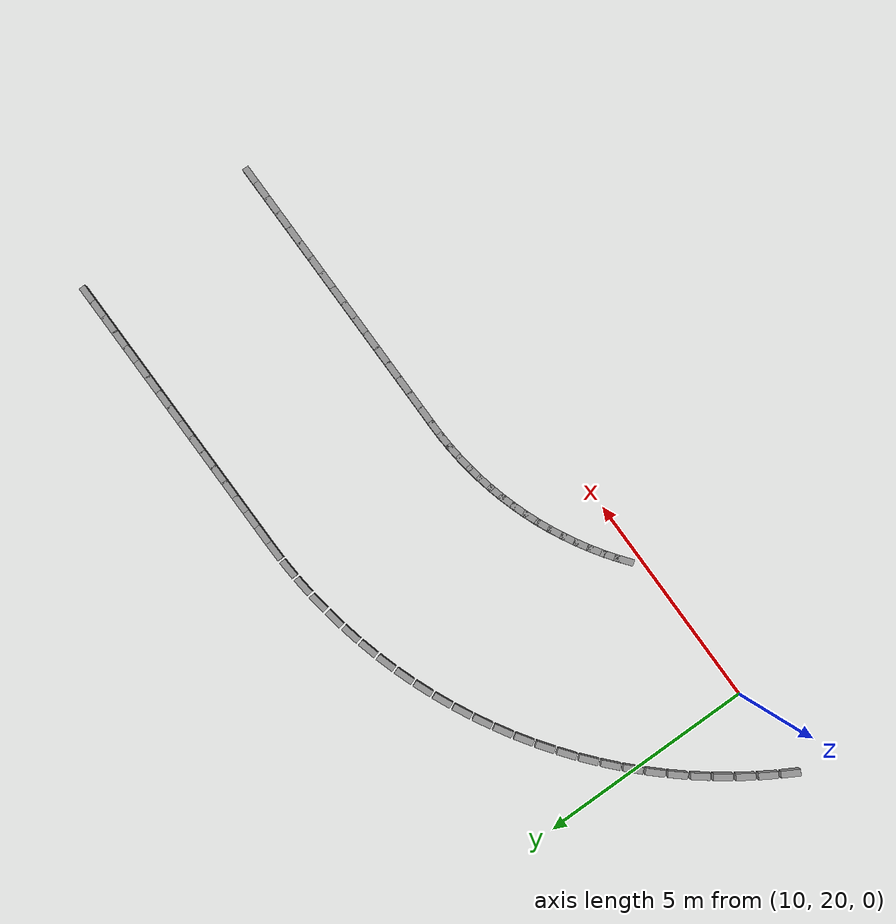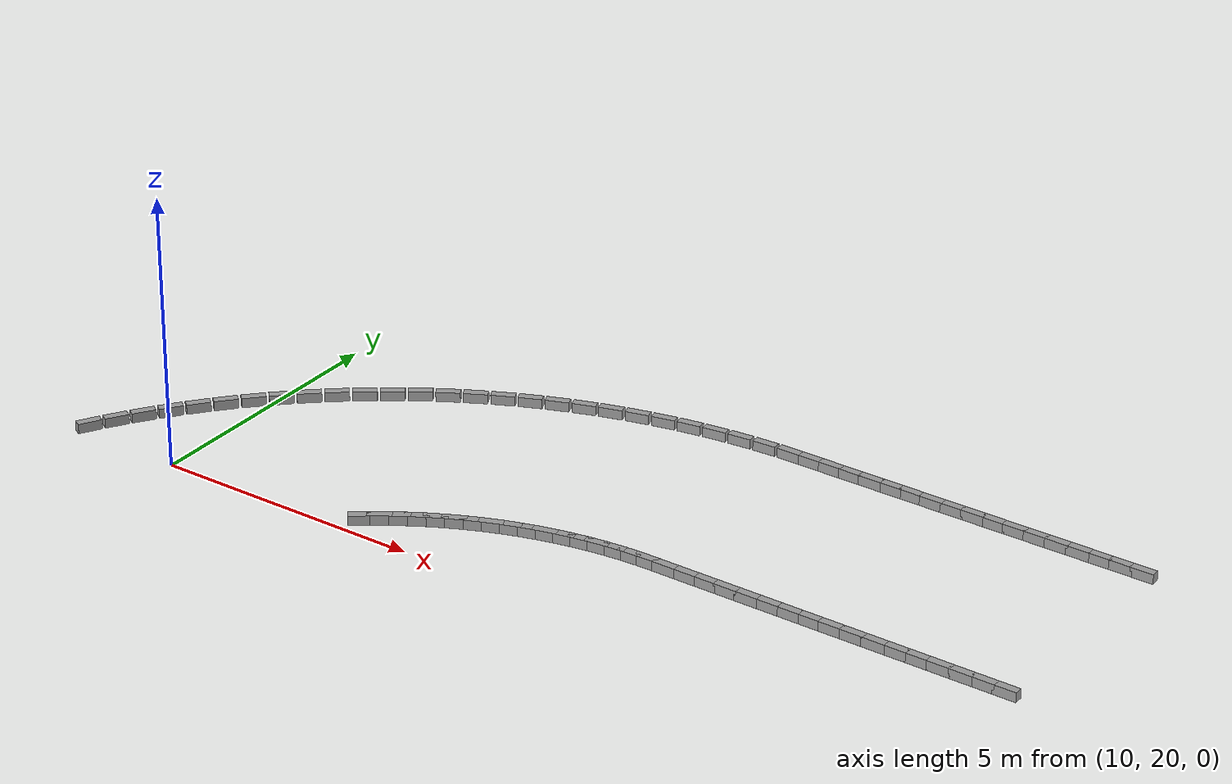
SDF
<sdf version="1.10">
 <world name="s_curve_avoidance">
  <model name="left_curb_seg_0071">
   <static>true</static>
   <pose>8.005241 20.132594 0.090000 0 0 1.053672</pose>
   <link name="curb">
    <collision name="collision">
     <geometry><box><size>0.432000 0.150000 0.180000</size></box></geometry>
    </collision>
    <visual name="visual">
     <geometry><box><size>0.432000 0.150000 0.180000</size></box></geometry>
     <material><ambient>0.58 0.58 0.58 1</ambient><diffuse>0.62 0.62 0.62 1</diffuse></material>
    </visual>
   </link>
  </model>
  <model name="left_curb_seg_0072">
   <static>true</static>
   <pose>8.254406 20.550988 0.090000 0 0 1.013672</pose>
   <link name="curb">
    <collision name="collision">
     <geometry><box><size>0.432000 0.150000 0.180000</size></box></geometry>
    </collision>
    <visual name="visual">
     <geometry><box><size>0.432000 0.150000 0.180000</size></box></geometry>
     <material><ambient>0.58 0.58 0.58 1</ambient><diffuse>0.62 0.62 0.62 1</diffuse></material>
    </visual>
   </link>
  </model>
  <model name="left_curb_seg_0073">
   <static>true</static>
   <pose>8.520103 20.959084 0.090000 0 0 0.973672</pose>
   <link name="curb">
    <collision name="collision">
     <geometry><box><size>0.432000 0.150000 0.180000</size></box></geometry>
    </collision>
    <visual name="visual">
     <geometry><box><size>0.432000 0.150000 0.180000</size></box></geometry>
     <material><ambient>0.58 0.58 0.58 1</ambient><diffuse>0.62 0.62 0.62 1</diffuse></material>
    </visual>
   </link>
  </model>
  <model name="left_curb_seg_0074">
   <static>true</static>
   <pose>8.801907 21.356228 0.090000 0 0 0.933672</pose>
   <link name="curb">
    <collision name="collision">
     <geometry><box><size>0.432000 0.150000 0.180000</size></box></geometry>
    </collision>
    <visual name="visual">
     <geometry><box><size>0.432000 0.150000 0.180000</size></box></geometry>
     <material><ambient>0.58 0.58 0.58 1</ambient><diffuse>0.62 0.62 0.62 1</diffuse></material>
    </visual>
   </link>
  </model>
  <model name="left_curb_seg_0075">
   <static>true</static>
   <pose>9.099368 21.741786 0.090000 0 0 0.893672</pose>
   <link name="curb">
    <collision name="collision">
     <geometry><box><size>0.432000 0.150000 0.180000</size></box></geometry>
    </collision>
    <visual name="visual">
     <geometry><box><size>0.432000 0.150000 0.180000</size></box></geometry>
     <material><ambient>0.58 0.58 0.58 1</ambient><diffuse>0.62 0.62 0.62 1</diffuse></material>
    </visual>
   </link>
  </model>
  <model name="left_curb_seg_0076">
   <static>true</static>
   <pose>9.412008 22.115140 0.090000 0 0 0.853672</pose>
   <link name="curb">
    <collision name="collision">
     <geometry><box><size>0.432000 0.150000 0.180000</size></box></geometry>
    </collision>
    <visual name="visual">
     <geometry><box><size>0.432000 0.150000 0.180000</size></box></geometry>
     <material><ambient>0.58 0.58 0.58 1</ambient><diffuse>0.62 0.62 0.62 1</diffuse></material>
    </visual>
   </link>
  </model>
  <model name="left_curb_seg_0077">
   <static>true</static>
   <pose>9.739329 22.475693 0.090000 0 0 0.813672</pose>
   <link name="curb">
    <collision name="collision">
     <geometry><box><size>0.432000 0.150000 0.180000</size></box></geometry>
    </collision>
    <visual name="visual">
     <geometry><box><size>0.432000 0.150000 0.180000</size></box></geometry>
     <material><ambient>0.58 0.58 0.58 1</ambient><diffuse>0.62 0.62 0.62 1</diffuse></material>
    </visual>
   </link>
  </model>
  <model name="left_curb_seg_0078">
   <static>true</static>
   <pose>10.080806 22.822868 0.090000 0 0 0.773672</pose>
   <link name="curb">
    <collision name="collision">
     <geometry><box><size>0.432000 0.150000 0.180000</size></box></geometry>
    </collision>
    <visual name="visual">
     <geometry><box><size>0.432000 0.150000 0.180000</size></box></geometry>
     <material><ambient>0.58 0.58 0.58 1</ambient><diffuse>0.62 0.62 0.62 1</diffuse></material>
    </visual>
   </link>
  </model>
  <model name="left_curb_seg_0079">
   <static>true</static>
   <pose>10.435894 23.156111 0.090000 0 0 0.733672</pose>
   <link name="curb">
    <collision name="collision">
     <geometry><box><size>0.432000 0.150000 0.180000</size></box></geometry>
    </collision>
    <visual name="visual">
     <geometry><box><size>0.432000 0.150000 0.180000</size></box></geometry>
     <material><ambient>0.58 0.58 0.58 1</ambient><diffuse>0.62 0.62 0.62 1</diffuse></material>
    </visual>
   </link>
  </model>
  <model name="left_curb_seg_0080">
   <static>true</static>
   <pose>10.804023 23.474886 0.090000 0 0 0.693672</pose>
   <link name="curb">
    <collision name="collision">
     <geometry><box><size>0.432000 0.150000 0.180000</size></box></geometry>
    </collision>
    <visual name="visual">
     <geometry><box><size>0.432000 0.150000 0.180000</size></box></geometry>
     <material><ambient>0.58 0.58 0.58 1</ambient><diffuse>0.62 0.62 0.62 1</diffuse></material>
    </visual>
   </link>
  </model>
  <model name="left_curb_seg_0081">
   <static>true</static>
   <pose>11.184606 23.778686 0.090000 0 0 0.653672</pose>
   <link name="curb">
    <collision name="collision">
     <geometry><box><size>0.432000 0.150000 0.180000</size></box></geometry>
    </collision>
    <visual name="visual">
     <geometry><box><size>0.432000 0.150000 0.180000</size></box></geometry>
     <material><ambient>0.58 0.58 0.58 1</ambient><diffuse>0.62 0.62 0.62 1</diffuse></material>
    </visual>
   </link>
  </model>
  <model name="left_curb_seg_0082">
   <static>true</static>
   <pose>11.577033 24.067024 0.090000 0 0 0.613672</pose>
   <link name="curb">
    <collision name="collision">
     <geometry><box><size>0.432000 0.150000 0.180000</size></box></geometry>
    </collision>
    <visual name="visual">
     <geometry><box><size>0.432000 0.150000 0.180000</size></box></geometry>
     <material><ambient>0.58 0.58 0.58 1</ambient><diffuse>0.62 0.62 0.62 1</diffuse></material>
    </visual>
   </link>
  </model>
  <model name="left_curb_seg_0083">
   <static>true</static>
   <pose>11.980676 24.339437 0.090000 0 0 0.573672</pose>
   <link name="curb">
    <collision name="collision">
     <geometry><box><size>0.432000 0.150000 0.180000</size></box></geometry>
    </collision>
    <visual name="visual">
     <geometry><box><size>0.432000 0.150000 0.180000</size></box></geometry>
     <material><ambient>0.58 0.58 0.58 1</ambient><diffuse>0.62 0.62 0.62 1</diffuse></material>
    </visual>
   </link>
  </model>
  <model name="left_curb_seg_0084">
   <static>true</static>
   <pose>12.394890 24.595492 0.090000 0 0 0.533672</pose>
   <link name="curb">
    <collision name="collision">
     <geometry><box><size>0.432000 0.150000 0.180000</size></box></geometry>
    </collision>
    <visual name="visual">
     <geometry><box><size>0.432000 0.150000 0.180000</size></box></geometry>
     <material><ambient>0.58 0.58 0.58 1</ambient><diffuse>0.62 0.62 0.62 1</diffuse></material>
    </visual>
   </link>
  </model>
  <model name="left_curb_seg_0085">
   <static>true</static>
   <pose>12.819013 24.834777 0.090000 0 0 0.493672</pose>
   <link name="curb">
    <collision name="collision">
     <geometry><box><size>0.432000 0.150000 0.180000</size></box></geometry>
    </collision>
    <visual name="visual">
     <geometry><box><size>0.432000 0.150000 0.180000</size></box></geometry>
     <material><ambient>0.58 0.58 0.58 1</ambient><diffuse>0.62 0.62 0.62 1</diffuse></material>
    </visual>
   </link>
  </model>
  <model name="left_curb_seg_0086">
   <static>true</static>
   <pose>13.252365 25.056911 0.090000 0 0 0.453672</pose>
   <link name="curb">
    <collision name="collision">
     <geometry><box><size>0.432000 0.150000 0.180000</size></box></geometry>
    </collision>
    <visual name="visual">
     <geometry><box><size>0.432000 0.150000 0.180000</size></box></geometry>
     <material><ambient>0.58 0.58 0.58 1</ambient><diffuse>0.62 0.62 0.62 1</diffuse></material>
    </visual>
   </link>
  </model>
  <model name="left_curb_seg_0087">
   <static>true</static>
   <pose>13.694253 25.261538 0.090000 0 0 0.413672</pose>
   <link name="curb">
    <collision name="collision">
     <geometry><box><size>0.432000 0.150000 0.180000</size></box></geometry>
    </collision>
    <visual name="visual">
     <geometry><box><size>0.432000 0.150000 0.180000</size></box></geometry>
     <material><ambient>0.58 0.58 0.58 1</ambient><diffuse>0.62 0.62 0.62 1</diffuse></material>
    </visual>
   </link>
  </model>
  <model name="left_curb_seg_0088">
   <static>true</static>
   <pose>14.143971 25.448330 0.090000 0 0 0.373672</pose>
   <link name="curb">
    <collision name="collision">
     <geometry><box><size>0.432000 0.150000 0.180000</size></box></geometry>
    </collision>
    <visual name="visual">
     <geometry><box><size>0.432000 0.150000 0.180000</size></box></geometry>
     <material><ambient>0.58 0.58 0.58 1</ambient><diffuse>0.62 0.62 0.62 1</diffuse></material>
    </visual>
   </link>
  </model>
  <model name="left_curb_seg_0089">
   <static>true</static>
   <pose>14.600798 25.616989 0.090000 0 0 0.333672</pose>
   <link name="curb">
    <collision name="collision">
     <geometry><box><size>0.432000 0.150000 0.180000</size></box></geometry>
    </collision>
    <visual name="visual">
     <geometry><box><size>0.432000 0.150000 0.180000</size></box></geometry>
     <material><ambient>0.58 0.58 0.58 1</ambient><diffuse>0.62 0.62 0.62 1</diffuse></material>
    </visual>
   </link>
  </model>
  <model name="left_curb_seg_0090">
   <static>true</static>
   <pose>15.064005 25.767245 0.090000 0 0 0.293672</pose>
   <link name="curb">
    <collision name="collision">
     <geometry><box><size>0.432000 0.150000 0.180000</size></box></geometry>
    </collision>
    <visual name="visual">
     <geometry><box><size>0.432000 0.150000 0.180000</size></box></geometry>
     <material><ambient>0.58 0.58 0.58 1</ambient><diffuse>0.62 0.62 0.62 1</diffuse></material>
    </visual>
   </link>
  </model>
  <model name="left_curb_seg_0091">
   <static>true</static>
   <pose>15.532850 25.898857 0.090000 0 0 0.253672</pose>
   <link name="curb">
    <collision name="collision">
     <geometry><box><size>0.432000 0.150000 0.180000</size></box></geometry>
    </collision>
    <visual name="visual">
     <geometry><box><size>0.432000 0.150000 0.180000</size></box></geometry>
     <material><ambient>0.58 0.58 0.58 1</ambient><diffuse>0.62 0.62 0.62 1</diffuse></material>
    </visual>
   </link>
  </model>
  <model name="left_curb_seg_0092">
   <static>true</static>
   <pose>16.006583 26.011615 0.090000 0 0 0.213672</pose>
   <link name="curb">
    <collision name="collision">
     <geometry><box><size>0.432000 0.150000 0.180000</size></box></geometry>
    </collision>
    <visual name="visual">
     <geometry><box><size>0.432000 0.150000 0.180000</size></box></geometry>
     <material><ambient>0.58 0.58 0.58 1</ambient><diffuse>0.62 0.62 0.62 1</diffuse></material>
    </visual>
   </link>
  </model>
  <model name="left_curb_seg_0093">
   <static>true</static>
   <pose>16.484446 26.105338 0.090000 0 0 0.173672</pose>
   <link name="curb">
    <collision name="collision">
     <geometry><box><size>0.432000 0.150000 0.180000</size></box></geometry>
    </collision>
    <visual name="visual">
     <geometry><box><size>0.432000 0.150000 0.180000</size></box></geometry>
     <material><ambient>0.58 0.58 0.58 1</ambient><diffuse>0.62 0.62 0.62 1</diffuse></material>
    </visual>
   </link>
  </model>
  <model name="left_curb_seg_0094">
   <static>true</static>
   <pose>16.965675 26.179878 0.090000 0 0 0.133672</pose>
   <link name="curb">
    <collision name="collision">
     <geometry><box><size>0.432000 0.150000 0.180000</size></box></geometry>
    </collision>
    <visual name="visual">
     <geometry><box><size>0.432000 0.150000 0.180000</size></box></geometry>
     <material><ambient>0.58 0.58 0.58 1</ambient><diffuse>0.62 0.62 0.62 1</diffuse></material>
    </visual>
   </link>
  </model>
  <model name="left_curb_seg_0095">
   <static>true</static>
   <pose>17.449500 26.235113 0.090000 0 0 0.093672</pose>
   <link name="curb">
    <collision name="collision">
     <geometry><box><size>0.432000 0.150000 0.180000</size></box></geometry>
    </collision>
    <visual name="visual">
     <geometry><box><size>0.432000 0.150000 0.180000</size></box></geometry>
     <material><ambient>0.58 0.58 0.58 1</ambient><diffuse>0.62 0.62 0.62 1</diffuse></material>
    </visual>
   </link>
  </model>
  <model name="left_curb_seg_0096">
   <static>true</static>
   <pose>17.935146 26.270957 0.090000 0 0 0.053672</pose>
   <link name="curb">
    <collision name="collision">
     <geometry><box><size>0.432000 0.150000 0.180000</size></box></geometry>
    </collision>
    <visual name="visual">
     <geometry><box><size>0.432000 0.150000 0.180000</size></box></geometry>
     <material><ambient>0.58 0.58 0.58 1</ambient><diffuse>0.62 0.62 0.62 1</diffuse></material>
    </visual>
   </link>
  </model>
  <model name="left_curb_seg_0097">
   <static>true</static>
   <pose>18.421766 26.287350 0.090000 0 0 0.013705</pose>
   <link name="curb">
    <collision name="collision">
     <geometry><box><size>0.432000 0.150000 0.180000</size></box></geometry>
    </collision>
    <visual name="visual">
     <geometry><box><size>0.432000 0.150000 0.180000</size></box></geometry>
     <material><ambient>0.58 0.58 0.58 1</ambient><diffuse>0.62 0.62 0.62 1</diffuse></material>
    </visual>
   </link>
  </model>
  <model name="left_curb_seg_0098">
   <static>true</static>
   <pose>18.851569 26.288866 0.090000 0 0 0.000000</pose>
   <link name="curb">
    <collision name="collision">
     <geometry><box><size>0.432000 0.150000 0.180000</size></box></geometry>
    </collision>
    <visual name="visual">
     <geometry><box><size>0.432000 0.150000 0.180000</size></box></geometry>
     <material><ambient>0.58 0.58 0.58 1</ambient><diffuse>0.62 0.62 0.62 1</diffuse></material>
    </visual>
   </link>
  </model>
  <model name="left_curb_seg_0099">
   <static>true</static>
   <pose>19.251569 26.288866 0.090000 0 0 0.000000</pose>
   <link name="curb">
    <collision name="collision">
     <geometry><box><size>0.432000 0.150000 0.180000</size></box></geometry>
    </collision>
    <visual name="visual">
     <geometry><box><size>0.432000 0.150000 0.180000</size></box></geometry>
     <material><ambient>0.58 0.58 0.58 1</ambient><diffuse>0.62 0.62 0.62 1</diffuse></material>
    </visual>
   </link>
  </model>
  <model name="left_curb_seg_0100">
   <static>true</static>
   <pose>19.651569 26.288866 0.090000 0 0 0.000000</pose>
   <link name="curb">
    <collision name="collision">
     <geometry><box><size>0.432000 0.150000 0.180000</size></box></geometry>
    </collision>
    <visual name="visual">
     <geometry><box><size>0.432000 0.150000 0.180000</size></box></geometry>
     <material><ambient>0.58 0.58 0.58 1</ambient><diffuse>0.62 0.62 0.62 1</diffuse></material>
    </visual>
   </link>
  </model>
  <model name="left_curb_seg_0101">
   <static>true</static>
   <pose>20.051569 26.288866 0.090000 0 0 0.000000</pose>
   <link name="curb">
    <collision name="collision">
     <geometry><box><size>0.432000 0.150000 0.180000</size></box></geometry>
    </collision>
    <visual name="visual">
     <geometry><box><size>0.432000 0.150000 0.180000</size></box></geometry>
     <material><ambient>0.58 0.58 0.58 1</ambient><diffuse>0.62 0.62 0.62 1</diffuse></material>
    </visual>
   </link>
  </model>
  <model name="left_curb_seg_0102">
   <static>true</static>
   <pose>20.451569 26.288866 0.090000 0 0 0.000000</pose>
   <link name="curb">
    <collision name="collision">
     <geometry><box><size>0.432000 0.150000 0.180000</size></box></geometry>
    </collision>
    <visual name="visual">
     <geometry><box><size>0.432000 0.150000 0.180000</size></box></geometry>
     <material><ambient>0.58 0.58 0.58 1</ambient><diffuse>0.62 0.62 0.62 1</diffuse></material>
    </visual>
   </link>
  </model>
  <model name="left_curb_seg_0103">
   <static>true</static>
   <pose>20.851569 26.288866 0.090000 0 0 0.000000</pose>
   <link name="curb">
    <collision name="collision">
     <geometry><box><size>0.432000 0.150000 0.180000</size></box></geometry>
    </collision>
    <visual name="visual">
     <geometry><box><size>0.432000 0.150000 0.180000</size></box></geometry>
     <material><ambient>0.58 0.58 0.58 1</ambient><diffuse>0.62 0.62 0.62 1</diffuse></material>
    </visual>
   </link>
  </model>
  <model name="left_curb_seg_0104">
   <static>true</static>
   <pose>21.251569 26.288866 0.090000 0 0 0.000000</pose>
   <link name="curb">
    <collision name="collision">
     <geometry><box><size>0.432000 0.150000 0.180000</size></box></geometry>
    </collision>
    <visual name="visual">
     <geometry><box><size>0.432000 0.150000 0.180000</size></box></geometry>
     <material><ambient>0.58 0.58 0.58 1</ambient><diffuse>0.62 0.62 0.62 1</diffuse></material>
    </visual>
   </link>
  </model>
  <model name="left_curb_seg_0105">
   <static>true</static>
   <pose>21.651569 26.288866 0.090000 0 0 0.000000</pose>
   <link name="curb">
    <collision name="collision">
     <geometry><box><size>0.432000 0.150000 0.180000</size></box></geometry>
    </collision>
    <visual name="visual">
     <geometry><box><size>0.432000 0.150000 0.180000</size></box></geometry>
     <material><ambient>0.58 0.58 0.58 1</ambient><diffuse>0.62 0.62 0.62 1</diffuse></material>
    </visual>
   </link>
  </model>
  <model name="left_curb_seg_0106">
   <static>true</static>
   <pose>22.051569 26.288866 0.090000 0 0 0.000000</pose>
   <link name="curb">
    <collision name="collision">
     <geometry><box><size>0.432000 0.150000 0.180000</size></box></geometry>
    </collision>
    <visual name="visual">
     <geometry><box><size>0.432000 0.150000 0.180000</size></box></geometry>
     <material><ambient>0.58 0.58 0.58 1</ambient><diffuse>0.62 0.62 0.62 1</diffuse></material>
    </visual>
   </link>
  </model>
  <model name="left_curb_seg_0107">
   <static>true</static>
   <pose>22.451569 26.288866 0.090000 0 0 0.000000</pose>
   <link name="curb">
    <collision name="collision">
     <geometry><box><size>0.432000 0.150000 0.180000</size></box></geometry>
    </collision>
    <visual name="visual">
     <geometry><box><size>0.432000 0.150000 0.180000</size></box></geometry>
     <material><ambient>0.58 0.58 0.58 1</ambient><diffuse>0.62 0.62 0.62 1</diffuse></material>
    </visual>
   </link>
  </model>
  <model name="left_curb_seg_0108">
   <static>true</static>
   <pose>22.851569 26.288866 0.090000 0 0 0.000000</pose>
   <link name="curb">
    <collision name="collision">
     <geometry><box><size>0.432000 0.150000 0.180000</size></box></geometry>
    </collision>
    <visual name="visual">
     <geometry><box><size>0.432000 0.150000 0.180000</size></box></geometry>
     <material><ambient>0.58 0.58 0.58 1</ambient><diffuse>0.62 0.62 0.62 1</diffuse></material>
    </visual>
   </link>
  </model>
  <model name="left_curb_seg_0109">
   <static>true</static>
   <pose>23.251569 26.288866 0.090000 0 0 0.000000</pose>
   <link name="curb">
    <collision name="collision">
     <geometry><box><size>0.432000 0.150000 0.180000</size></box></geometry>
    </collision>
    <visual name="visual">
     <geometry><box><size>0.432000 0.150000 0.180000</size></box></geometry>
     <material><ambient>0.58 0.58 0.58 1</ambient><diffuse>0.62 0.62 0.62 1</diffuse></material>
    </visual>
   </link>
  </model>
  <model name="left_curb_seg_0110">
   <static>true</static>
   <pose>23.651569 26.288866 0.090000 0 0 0.000000</pose>
   <link name="curb">
    <collision name="collision">
     <geometry><box><size>0.432000 0.150000 0.180000</size></box></geometry>
    </collision>
    <visual name="visual">
     <geometry><box><size>0.432000 0.150000 0.180000</size></box></geometry>
     <material><ambient>0.58 0.58 0.58 1</ambient><diffuse>0.62 0.62 0.62 1</diffuse></material>
    </visual>
   </link>
  </model>
  <model name="left_curb_seg_0111">
   <static>true</static>
   <pose>24.051569 26.288866 0.090000 0 0 0.000000</pose>
   <link name="curb">
    <collision name="collision">
     <geometry><box><size>0.432000 0.150000 0.180000</size></box></geometry>
    </collision>
    <visual name="visual">
     <geometry><box><size>0.432000 0.150000 0.180000</size></box></geometry>
     <material><ambient>0.58 0.58 0.58 1</ambient><diffuse>0.62 0.62 0.62 1</diffuse></material>
    </visual>
   </link>
  </model>
  <model name="left_curb_seg_0112">
   <static>true</static>
   <pose>24.451569 26.288866 0.090000 0 0 0.000000</pose>
   <link name="curb">
    <collision name="collision">
     <geometry><box><size>0.432000 0.150000 0.180000</size></box></geometry>
    </collision>
    <visual name="visual">
     <geometry><box><size>0.432000 0.150000 0.180000</size></box></geometry>
     <material><ambient>0.58 0.58 0.58 1</ambient><diffuse>0.62 0.62 0.62 1</diffuse></material>
    </visual>
   </link>
  </model>
  <model name="left_curb_seg_0113">
   <static>true</static>
   <pose>24.851569 26.288866 0.090000 0 0 0.000000</pose>
   <link name="curb">
    <collision name="collision">
     <geometry><box><size>0.432000 0.150000 0.180000</size></box></geometry>
    </collision>
    <visual name="visual">
     <geometry><box><size>0.432000 0.150000 0.180000</size></box></geometry>
     <material><ambient>0.58 0.58 0.58 1</ambient><diffuse>0.62 0.62 0.62 1</diffuse></material>
    </visual>
   </link>
  </model>
  <model name="left_curb_seg_0114">
   <static>true</static>
   <pose>25.241569 26.288866 0.090000 0 0 0.000000</pose>
   <link name="curb">
    <collision name="collision">
     <geometry><box><size>0.432000 0.150000 0.180000</size></box></geometry>
    </collision>
    <visual name="visual">
     <geometry><box><size>0.432000 0.150000 0.180000</size></box></geometry>
     <material><ambient>0.58 0.58 0.58 1</ambient><diffuse>0.62 0.62 0.62 1</diffuse></material>
    </visual>
   </link>
  </model>
  <model name="right_curb_seg_0081">
   <static>true</static>
   <pose>13.829866 20.325412 0.090000 0 0 0.653672</pose>
   <link name="curb">
    <collision name="collision">
     <geometry><box><size>0.432000 0.150000 0.180000</size></box></geometry>
    </collision>
    <visual name="visual">
     <geometry><box><size>0.432000 0.150000 0.180000</size></box></geometry>
     <material><ambient>0.58 0.58 0.58 1</ambient><diffuse>0.62 0.62 0.62 1</diffuse></material>
    </visual>
   </link>
  </model>
  <model name="right_curb_seg_0082">
   <static>true</static>
   <pose>14.082083 20.510730 0.090000 0 0 0.613672</pose>
   <link name="curb">
    <collision name="collision">
     <geometry><box><size>0.432000 0.150000 0.180000</size></box></geometry>
    </collision>
    <visual name="visual">
     <geometry><box><size>0.432000 0.150000 0.180000</size></box></geometry>
     <material><ambient>0.58 0.58 0.58 1</ambient><diffuse>0.62 0.62 0.62 1</diffuse></material>
    </visual>
   </link>
  </model>
  <model name="right_curb_seg_0083">
   <static>true</static>
   <pose>14.341508 20.685813 0.090000 0 0 0.573672</pose>
   <link name="curb">
    <collision name="collision">
     <geometry><box><size>0.432000 0.150000 0.180000</size></box></geometry>
    </collision>
    <visual name="visual">
     <geometry><box><size>0.432000 0.150000 0.180000</size></box></geometry>
     <material><ambient>0.58 0.58 0.58 1</ambient><diffuse>0.62 0.62 0.62 1</diffuse></material>
    </visual>
   </link>
  </model>
  <model name="right_curb_seg_0084">
   <static>true</static>
   <pose>14.607728 20.850382 0.090000 0 0 0.533672</pose>
   <link name="curb">
    <collision name="collision">
     <geometry><box><size>0.432000 0.150000 0.180000</size></box></geometry>
    </collision>
    <visual name="visual">
     <geometry><box><size>0.432000 0.150000 0.180000</size></box></geometry>
     <material><ambient>0.58 0.58 0.58 1</ambient><diffuse>0.62 0.62 0.62 1</diffuse></material>
    </visual>
   </link>
  </model>
  <model name="right_curb_seg_0085">
   <static>true</static>
   <pose>14.880316 21.004173 0.090000 0 0 0.493672</pose>
   <link name="curb">
    <collision name="collision">
     <geometry><box><size>0.432000 0.150000 0.180000</size></box></geometry>
    </collision>
    <visual name="visual">
     <geometry><box><size>0.432000 0.150000 0.180000</size></box></geometry>
     <material><ambient>0.58 0.58 0.58 1</ambient><diffuse>0.62 0.62 0.62 1</diffuse></material>
    </visual>
   </link>
  </model>
  <model name="right_curb_seg_0086">
   <static>true</static>
   <pose>15.158836 21.146941 0.090000 0 0 0.453672</pose>
   <link name="curb">
    <collision name="collision">
     <geometry><box><size>0.432000 0.150000 0.180000</size></box></geometry>
    </collision>
    <visual name="visual">
     <geometry><box><size>0.432000 0.150000 0.180000</size></box></geometry>
     <material><ambient>0.58 0.58 0.58 1</ambient><diffuse>0.62 0.62 0.62 1</diffuse></material>
    </visual>
   </link>
  </model>
  <model name="right_curb_seg_0087">
   <static>true</static>
   <pose>15.442842 21.278457 0.090000 0 0 0.413672</pose>
   <link name="curb">
    <collision name="collision">
     <geometry><box><size>0.432000 0.150000 0.180000</size></box></geometry>
    </collision>
    <visual name="visual">
     <geometry><box><size>0.432000 0.150000 0.180000</size></box></geometry>
     <material><ambient>0.58 0.58 0.58 1</ambient><diffuse>0.62 0.62 0.62 1</diffuse></material>
    </visual>
   </link>
  </model>
  <model name="right_curb_seg_0088">
   <static>true</static>
   <pose>15.731880 21.398510 0.090000 0 0 0.373672</pose>
   <link name="curb">
    <collision name="collision">
     <geometry><box><size>0.432000 0.150000 0.180000</size></box></geometry>
    </collision>
    <visual name="visual">
     <geometry><box><size>0.432000 0.150000 0.180000</size></box></geometry>
     <material><ambient>0.58 0.58 0.58 1</ambient><diffuse>0.62 0.62 0.62 1</diffuse></material>
    </visual>
   </link>
  </model>
  <model name="right_curb_seg_0089">
   <static>true</static>
   <pose>16.025488 21.506909 0.090000 0 0 0.333672</pose>
   <link name="curb">
    <collision name="collision">
     <geometry><box><size>0.432000 0.150000 0.180000</size></box></geometry>
    </collision>
    <visual name="visual">
     <geometry><box><size>0.432000 0.150000 0.180000</size></box></geometry>
     <material><ambient>0.58 0.58 0.58 1</ambient><diffuse>0.62 0.62 0.62 1</diffuse></material>
    </visual>
   </link>
  </model>
  <model name="right_curb_seg_0090">
   <static>true</static>
   <pose>16.323196 21.603480 0.090000 0 0 0.293672</pose>
   <link name="curb">
    <collision name="collision">
     <geometry><box><size>0.432000 0.150000 0.180000</size></box></geometry>
    </collision>
    <visual name="visual">
     <geometry><box><size>0.432000 0.150000 0.180000</size></box></geometry>
     <material><ambient>0.58 0.58 0.58 1</ambient><diffuse>0.62 0.62 0.62 1</diffuse></material>
    </visual>
   </link>
  </model>
  <model name="right_curb_seg_0091">
   <static>true</static>
   <pose>16.624528 21.688068 0.090000 0 0 0.253672</pose>
   <link name="curb">
    <collision name="collision">
     <geometry><box><size>0.432000 0.150000 0.180000</size></box></geometry>
    </collision>
    <visual name="visual">
     <geometry><box><size>0.432000 0.150000 0.180000</size></box></geometry>
     <material><ambient>0.58 0.58 0.58 1</ambient><diffuse>0.62 0.62 0.62 1</diffuse></material>
    </visual>
   </link>
  </model>
  <model name="right_curb_seg_0092">
   <static>true</static>
   <pose>16.929001 21.760539 0.090000 0 0 0.213672</pose>
   <link name="curb">
    <collision name="collision">
     <geometry><box><size>0.432000 0.150000 0.180000</size></box></geometry>
    </collision>
    <visual name="visual">
     <geometry><box><size>0.432000 0.150000 0.180000</size></box></geometry>
     <material><ambient>0.58 0.58 0.58 1</ambient><diffuse>0.62 0.62 0.62 1</diffuse></material>
    </visual>
   </link>
  </model>
  <model name="right_curb_seg_0093">
   <static>true</static>
   <pose>17.236129 21.820776 0.090000 0 0 0.173672</pose>
   <link name="curb">
    <collision name="collision">
     <geometry><box><size>0.432000 0.150000 0.180000</size></box></geometry>
    </collision>
    <visual name="visual">
     <geometry><box><size>0.432000 0.150000 0.180000</size></box></geometry>
     <material><ambient>0.58 0.58 0.58 1</ambient><diffuse>0.62 0.62 0.62 1</diffuse></material>
    </visual>
   </link>
  </model>
  <model name="right_curb_seg_0094">
   <static>true</static>
   <pose>17.545419 21.868683 0.090000 0 0 0.133672</pose>
   <link name="curb">
    <collision name="collision">
     <geometry><box><size>0.432000 0.150000 0.180000</size></box></geometry>
    </collision>
    <visual name="visual">
     <geometry><box><size>0.432000 0.150000 0.180000</size></box></geometry>
     <material><ambient>0.58 0.58 0.58 1</ambient><diffuse>0.62 0.62 0.62 1</diffuse></material>
    </visual>
   </link>
  </model>
  <model name="right_curb_seg_0095">
   <static>true</static>
   <pose>17.856379 21.904184 0.090000 0 0 0.093672</pose>
   <link name="curb">
    <collision name="collision">
     <geometry><box><size>0.432000 0.150000 0.180000</size></box></geometry>
    </collision>
    <visual name="visual">
     <geometry><box><size>0.432000 0.150000 0.180000</size></box></geometry>
     <material><ambient>0.58 0.58 0.58 1</ambient><diffuse>0.62 0.62 0.62 1</diffuse></material>
    </visual>
   </link>
  </model>
  <model name="right_curb_seg_0096">
   <static>true</static>
   <pose>18.168509 21.927221 0.090000 0 0 0.053672</pose>
   <link name="curb">
    <collision name="collision">
     <geometry><box><size>0.432000 0.150000 0.180000</size></box></geometry>
    </collision>
    <visual name="visual">
     <geometry><box><size>0.432000 0.150000 0.180000</size></box></geometry>
     <material><ambient>0.58 0.58 0.58 1</ambient><diffuse>0.62 0.62 0.62 1</diffuse></material>
    </visual>
   </link>
  </model>
  <model name="right_curb_seg_0097">
   <static>true</static>
   <pose>18.481382 21.937759 0.090000 0 0 0.013705</pose>
   <link name="curb">
    <collision name="collision">
     <geometry><box><size>0.432000 0.150000 0.180000</size></box></geometry>
    </collision>
    <visual name="visual">
     <geometry><box><size>0.432000 0.150000 0.180000</size></box></geometry>
     <material><ambient>0.58 0.58 0.58 1</ambient><diffuse>0.62 0.62 0.62 1</diffuse></material>
    </visual>
   </link>
  </model>
  <model name="right_curb_seg_0098">
   <static>true</static>
   <pose>18.851569 21.938866 0.090000 0 0 0.000000</pose>
   <link name="curb">
    <collision name="collision">
     <geometry><box><size>0.432000 0.150000 0.180000</size></box></geometry>
    </collision>
    <visual name="visual">
     <geometry><box><size>0.432000 0.150000 0.180000</size></box></geometry>
     <material><ambient>0.58 0.58 0.58 1</ambient><diffuse>0.62 0.62 0.62 1</diffuse></material>
    </visual>
   </link>
  </model>
  <model name="right_curb_seg_0099">
   <static>true</static>
   <pose>19.251569 21.938866 0.090000 0 0 0.000000</pose>
   <link name="curb">
    <collision name="collision">
     <geometry><box><size>0.432000 0.150000 0.180000</size></box></geometry>
    </collision>
    <visual name="visual">
     <geometry><box><size>0.432000 0.150000 0.180000</size></box></geometry>
     <material><ambient>0.58 0.58 0.58 1</ambient><diffuse>0.62 0.62 0.62 1</diffuse></material>
    </visual>
   </link>
  </model>
  <model name="right_curb_seg_0100">
   <static>true</static>
   <pose>19.651569 21.938866 0.090000 0 0 0.000000</pose>
   <link name="curb">
    <collision name="collision">
     <geometry><box><size>0.432000 0.150000 0.180000</size></box></geometry>
    </collision>
    <visual name="visual">
     <geometry><box><size>0.432000 0.150000 0.180000</size></box></geometry>
     <material><ambient>0.58 0.58 0.58 1</ambient><diffuse>0.62 0.62 0.62 1</diffuse></material>
    </visual>
   </link>
  </model>
  <model name="right_curb_seg_0101">
   <static>true</static>
   <pose>20.051569 21.938866 0.090000 0 0 0.000000</pose>
   <link name="curb">
    <collision name="collision">
     <geometry><box><size>0.432000 0.150000 0.180000</size></box></geometry>
    </collision>
    <visual name="visual">
     <geometry><box><size>0.432000 0.150000 0.180000</size></box></geometry>
     <material><ambient>0.58 0.58 0.58 1</ambient><diffuse>0.62 0.62 0.62 1</diffuse></material>
    </visual>
   </link>
  </model>
  <model name="right_curb_seg_0102">
   <static>true</static>
   <pose>20.451569 21.938866 0.090000 0 0 0.000000</pose>
   <link name="curb">
    <collision name="collision">
     <geometry><box><size>0.432000 0.150000 0.180000</size></box></geometry>
    </collision>
    <visual name="visual">
     <geometry><box><size>0.432000 0.150000 0.180000</size></box></geometry>
     <material><ambient>0.58 0.58 0.58 1</ambient><diffuse>0.62 0.62 0.62 1</diffuse></material>
    </visual>
   </link>
  </model>
  <model name="right_curb_seg_0103">
   <static>true</static>
   <pose>20.851569 21.938866 0.090000 0 0 0.000000</pose>
   <link name="curb">
    <collision name="collision">
     <geometry><box><size>0.432000 0.150000 0.180000</size></box></geometry>
    </collision>
    <visual name="visual">
     <geometry><box><size>0.432000 0.150000 0.180000</size></box></geometry>
     <material><ambient>0.58 0.58 0.58 1</ambient><diffuse>0.62 0.62 0.62 1</diffuse></material>
    </visual>
   </link>
  </model>
  <model name="right_curb_seg_0104">
   <static>true</static>
   <pose>21.251569 21.938866 0.090000 0 0 0.000000</pose>
   <link name="curb">
    <collision name="collision">
     <geometry><box><size>0.432000 0.150000 0.180000</size></box></geometry>
    </collision>
    <visual name="visual">
     <geometry><box><size>0.432000 0.150000 0.180000</size></box></geometry>
     <material><ambient>0.58 0.58 0.58 1</ambient><diffuse>0.62 0.62 0.62 1</diffuse></material>
    </visual>
   </link>
  </model>
  <model name="right_curb_seg_0105">
   <static>true</static>
   <pose>21.651569 21.938866 0.090000 0 0 0.000000</pose>
   <link name="curb">
    <collision name="collision">
     <geometry><box><size>0.432000 0.150000 0.180000</size></box></geometry>
    </collision>
    <visual name="visual">
     <geometry><box><size>0.432000 0.150000 0.180000</size></box></geometry>
     <material><ambient>0.58 0.58 0.58 1</ambient><diffuse>0.62 0.62 0.62 1</diffuse></material>
    </visual>
   </link>
  </model>
  <model name="right_curb_seg_0106">
   <static>true</static>
   <pose>22.051569 21.938866 0.090000 0 0 0.000000</pose>
   <link name="curb">
    <collision name="collision">
     <geometry><box><size>0.432000 0.150000 0.180000</size></box></geometry>
    </collision>
    <visual name="visual">
     <geometry><box><size>0.432000 0.150000 0.180000</size></box></geometry>
     <material><ambient>0.58 0.58 0.58 1</ambient><diffuse>0.62 0.62 0.62 1</diffuse></material>
    </visual>
   </link>
  </model>
  <model name="right_curb_seg_0107">
   <static>true</static>
   <pose>22.451569 21.938866 0.090000 0 0 0.000000</pose>
   <link name="curb">
    <collision name="collision">
     <geometry><box><size>0.432000 0.150000 0.180000</size></box></geometry>
    </collision>
    <visual name="visual">
     <geometry><box><size>0.432000 0.150000 0.180000</size></box></geometry>
     <material><ambient>0.58 0.58 0.58 1</ambient><diffuse>0.62 0.62 0.62 1</diffuse></material>
    </visual>
   </link>
  </model>
  <model name="right_curb_seg_0108">
   <static>true</static>
   <pose>22.851569 21.938866 0.090000 0 0 0.000000</pose>
   <link name="curb">
    <collision name="collision">
     <geometry><box><size>0.432000 0.150000 0.180000</size></box></geometry>
    </collision>
    <visual name="visual">
     <geometry><box><size>0.432000 0.150000 0.180000</size></box></geometry>
     <material><ambient>0.58 0.58 0.58 1</ambient><diffuse>0.62 0.62 0.62 1</diffuse></material>
    </visual>
   </link>
  </model>
  <model name="right_curb_seg_0109">
   <static>true</static>
   <pose>23.251569 21.938866 0.090000 0 0 0.000000</pose>
   <link name="curb">
    <collision name="collision">
     <geometry><box><size>0.432000 0.150000 0.180000</size></box></geometry>
    </collision>
    <visual name="visual">
     <geometry><box><size>0.432000 0.150000 0.180000</size></box></geometry>
     <material><ambient>0.58 0.58 0.58 1</ambient><diffuse>0.62 0.62 0.62 1</diffuse></material>
    </visual>
   </link>
  </model>
  <model name="right_curb_seg_0110">
   <static>true</static>
   <pose>23.651569 21.938866 0.090000 0 0 0.000000</pose>
   <link name="curb">
    <collision name="collision">
     <geometry><box><size>0.432000 0.150000 0.180000</size></box></geometry>
    </collision>
    <visual name="visual">
     <geometry><box><size>0.432000 0.150000 0.180000</size></box></geometry>
     <material><ambient>0.58 0.58 0.58 1</ambient><diffuse>0.62 0.62 0.62 1</diffuse></material>
    </visual>
   </link>
  </model>
  <model name="right_curb_seg_0111">
   <static>true</static>
   <pose>24.051569 21.938866 0.090000 0 0 0.000000</pose>
   <link name="curb">
    <collision name="collision">
     <geometry><box><size>0.432000 0.150000 0.180000</size></box></geometry>
    </collision>
    <visual name="visual">
     <geometry><box><size>0.432000 0.150000 0.180000</size></box></geometry>
     <material><ambient>0.58 0.58 0.58 1</ambient><diffuse>0.62 0.62 0.62 1</diffuse></material>
    </visual>
   </link>
  </model>
  <model name="right_curb_seg_0112">
   <static>true</static>
   <pose>24.451569 21.938866 0.090000 0 0 0.000000</pose>
   <link name="curb">
    <collision name="collision">
     <geometry><box><size>0.432000 0.150000 0.180000</size></box></geometry>
    </collision>
    <visual name="visual">
     <geometry><box><size>0.432000 0.150000 0.180000</size></box></geometry>
     <material><ambient>0.58 0.58 0.58 1</ambient><diffuse>0.62 0.62 0.62 1</diffuse></material>
    </visual>
   </link>
  </model>
  <model name="right_curb_seg_0113">
   <static>true</static>
   <pose>24.851569 21.938866 0.090000 0 0 0.000000</pose>
   <link name="curb">
    <collision name="collision">
     <geometry><box><size>0.432000 0.150000 0.180000</size></box></geometry>
    </collision>
    <visual name="visual">
     <geometry><box><size>0.432000 0.150000 0.180000</size></box></geometry>
     <material><ambient>0.58 0.58 0.58 1</ambient><diffuse>0.62 0.62 0.62 1</diffuse></material>
    </visual>
   </link>
  </model>
  <model name="right_curb_seg_0114">
   <static>true</static>
   <pose>25.241569 21.938866 0.090000 0 0 0.000000</pose>
   <link name="curb">
    <collision name="collision">
     <geometry><box><size>0.432000 0.150000 0.180000</size></box></geometry>
    </collision>
    <visual name="visual">
     <geometry><box><size>0.432000 0.150000 0.180000</size></box></geometry>
     <material><ambient>0.58 0.58 0.58 1</ambient><diffuse>0.62 0.62 0.62 1</diffuse></material>
    </visual>
   </link>
  </model>
 </world>
</sdf>
